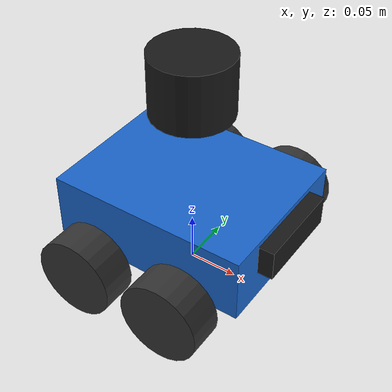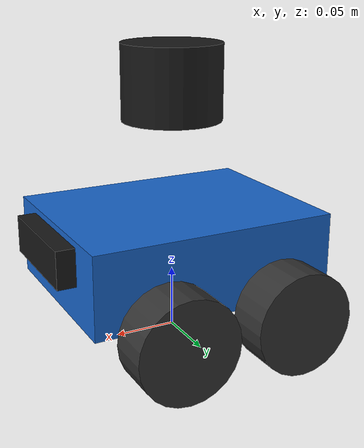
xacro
<?xml version="1.0"?>
<robot name="warehouse_bot" xmlns:xacro="http://www.ros.org/wiki/xacro">

  <!-- ============================================================
       PROPERTIES
       ============================================================ -->

  <!-- Chassis -->
  <xacro:property name="chassis_length"  value="0.20"/>
  <xacro:property name="chassis_width"   value="0.155"/>
  <xacro:property name="chassis_height"  value="0.065"/>
  <xacro:property name="chassis_mass"    value="3.0"/>

  <!-- Wheels -->
  <xacro:property name="wheel_radius"    value="0.04"/>
  <xacro:property name="wheel_width"     value="0.035"/>
  <xacro:property name="wheel_mass"      value="0.3"/>
  <xacro:property name="wheel_separation" value="0.21"/>   <!-- left to right, center to center -->
  <xacro:property name="wheelbase"       value="0.095"/>   <!-- front to rear axle, center to center -->

  <!-- LiDAR -->
  <xacro:property name="lidar_height"    value="0.205"/>   <!-- from ground -->
  <xacro:property name="lidar_radius"    value="0.04"/>
  <xacro:property name="lidar_length"    value="0.06"/>

  <!-- Derived: chassis sits on top of wheels -->
  <!-- chassis_z = wheel_radius (ground to axle) + chassis_height/2 -->
  <xacro:property name="chassis_z"       value="${wheel_radius + chassis_height / 2.0}"/>

  <!-- ============================================================
       MATERIALS
       ============================================================ -->
  <material name="blue">
    <color rgba="0.1 0.4 0.8 1.0"/>
  </material>
  <material name="dark_grey">
    <color rgba="0.2 0.2 0.2 1.0"/>
  </material>
  <material name="grey">
    <color rgba="0.5 0.5 0.5 1.0"/>
  </material>
  <material name="black">
    <color rgba="0.1 0.1 0.1 1.0"/>
  </material>

  <!-- ============================================================
       INERTIA MACROS
       ============================================================ -->
  <xacro:macro name="box_inertia" params="m l w h">
    <inertial>
      <mass value="${m}"/>
      <inertia
        ixx="${m*(w*w+h*h)/12}" ixy="0" ixz="0"
        iyy="${m*(l*l+h*h)/12}" iyz="0"
        izz="${m*(l*l+w*w)/12}"/>
    </inertial>
  </xacro:macro>

  <xacro:macro name="cylinder_inertia" params="m r h">
    <inertial>
      <mass value="${m}"/>
      <inertia
        ixx="${m*(3*r*r+h*h)/12}" ixy="0" ixz="0"
        iyy="${m*(3*r*r+h*h)/12}" iyz="0"
        izz="${m*r*r/2}"/>
    </inertial>
  </xacro:macro>

  <!-- ============================================================
       BASE LINK (chassis)
       ============================================================ -->
  <link name="base_link">
    <xacro:box_inertia m="${chassis_mass}"
                       l="${chassis_length}"
                       w="${chassis_width}"
                       h="${chassis_height}"/>
    <visual>
      <origin xyz="0 0 ${chassis_z}" rpy="0 0 0"/>
      <geometry>
        <box size="${chassis_length} ${chassis_width} ${chassis_height}"/>
      </geometry>
      <material name="blue"/>
    </visual>
    <collision>
      <origin xyz="0 0 ${chassis_z}" rpy="0 0 0"/>
      <geometry>
        <box size="${chassis_length} ${chassis_width} ${chassis_height}"/>
      </geometry>
    </collision>
  </link>

  <!-- ============================================================
       WHEEL MACRO
       ============================================================ -->
  <xacro:macro name="wheel" params="name x_pos y_pos">

    <link name="${name}_link">
      <xacro:cylinder_inertia m="${wheel_mass}" r="${wheel_radius}" h="${wheel_width}"/>
      <visual>
        <origin xyz="0 0 0" rpy="${pi/2} 0 0"/>
        <geometry>
          <cylinder radius="${wheel_radius}" length="${wheel_width}"/>
        </geometry>
        <material name="dark_grey"/>
      </visual>
      <collision>
        <origin xyz="0 0 0" rpy="${pi/2} 0 0"/>
        <geometry>
          <cylinder radius="${wheel_radius}" length="${wheel_width}"/>
        </geometry>
      </collision>
    </link>

    <joint name="${name}_joint" type="continuous">
      <parent link="base_link"/>
      <child  link="${name}_link"/>
      <origin xyz="${x_pos} ${y_pos} ${wheel_radius}" rpy="0 0 0"/>
      <axis xyz="0 1 0"/>
      <dynamics damping="0.1" friction="0.1"/>
    </joint>

    <!-- Gazebo wheel friction -->
    <gazebo reference="${name}_link">
      <mu1>1.0</mu1>
      <mu2>1.0</mu2>
      <material>Gazebo/DarkGrey</material>
    </gazebo>

  </xacro:macro>

  <xacro:wheel name="front_left_wheel"
               x_pos="${wheelbase/2}"
               y_pos="${wheel_separation/2}"/>

  <xacro:wheel name="front_right_wheel"
               x_pos="${wheelbase/2}"
               y_pos="${-wheel_separation/2}"/>

  <xacro:wheel name="rear_left_wheel"
               x_pos="${-wheelbase/2}"
               y_pos="${wheel_separation/2}"/>

  <xacro:wheel name="rear_right_wheel"
               x_pos="${-wheelbase/2}"
               y_pos="${-wheel_separation/2}"/>

  <link name="base_laser">
    <inertial>
      <mass value="0.18"/>
      <inertia ixx="0.001" ixy="0" ixz="0"
               iyy="0.001" iyz="0" izz="0.001"/>
    </inertial>
    <visual>
      <origin xyz="0 0 0" rpy="0 0 0"/>
      <geometry>
        <cylinder radius="${lidar_radius}" length="${lidar_length}"/>
      </geometry>
      <material name="black"/>
    </visual>
    <collision>
      <origin xyz="0 0 0" rpy="0 0 0"/>
      <geometry>
        <cylinder radius="${lidar_radius}" length="${lidar_length}"/>
      </geometry>
    </collision>
  </link>

  <joint name="lidar_joint" type="fixed">
    <parent link="base_link"/>
    <child  link="base_laser"/>
    <origin xyz="0 0 ${lidar_height}" rpy="0 0 0"/>
  </joint>

  <link name="imu_link">
    <inertial>
      <mass value="0.01"/>
      <inertia ixx="0.00001" ixy="0" ixz="0"
               iyy="0.00001" iyz="0" izz="0.00001"/>
    </inertial>
    <visual>
      <origin xyz="0 0 0" rpy="0 0 0"/>
      <geometry><box size="0.02 0.02 0.005"/></geometry>
      <material name="grey"/>
    </visual>
  </link>

  <joint name="imu_joint" type="fixed">
    <parent link="base_link"/>
    <child  link="imu_link"/>
    <origin xyz="0 0 ${chassis_z}" rpy="0 0 0"/>
  </joint>

  <!-- ============================================================
       CAMERA LINK (placeholder — update when camera selected)
       ============================================================ -->
  <link name="camera_link">
    <inertial>
      <mass value="0.05"/>
      <inertia ixx="0.00001" ixy="0" ixz="0"
               iyy="0.00001" iyz="0" izz="0.00001"/>
    </inertial>
    <visual>
      <origin xyz="0 0 0" rpy="0 0 0"/>
      <geometry><box size="0.03 0.09 0.03"/></geometry>
      <material name="black"/>
    </visual>
  </link>

  <joint name="camera_joint" type="fixed">
    <parent link="base_link"/>
    <child  link="camera_link"/>
    <!-- Camera is centered left/right, 10 cm forward of robot center, 8.5 cm from ground. -->
    <origin xyz="0.10 0 0.085" rpy="0 0 0"/>
  </joint>

  <link name="camera_optical_link"/>
  <joint name="camera_optical_joint" type="fixed">
    <parent link="camera_link"/>
    <child  link="camera_optical_link"/>
    <origin xyz="0 0 0" rpy="${-pi/2} 0 ${-pi/2}"/>
  </joint>

  <!-- ============================================================
       GAZEBO PLUGINS
       ============================================================ -->

  <!-- Differential drive plugin (skid steer — all 4 wheels) -->
  <gazebo>
    <plugin name="diff_drive" filename="libgazebo_ros_diff_drive.so">
      <num_wheel_pairs>2</num_wheel_pairs>
      <left_joint>front_left_wheel_joint</left_joint>
      <left_joint>rear_left_wheel_joint</left_joint>
      <right_joint>front_right_wheel_joint</right_joint>
      <right_joint>rear_right_wheel_joint</right_joint>
      <wheel_separation>${wheel_separation}</wheel_separation>
      <wheel_diameter>${2*wheel_radius}</wheel_diameter>
      <max_wheel_torque>20</max_wheel_torque>
      <max_wheel_acceleration>1.0</max_wheel_acceleration>
      <publish_odom>true</publish_odom>
      <publish_odom_tf>true</publish_odom_tf>
      <publish_wheel_tf>false</publish_wheel_tf>
      <odometry_frame>odom</odometry_frame>
      <robot_base_frame>base_link</robot_base_frame>
    </plugin>
  </gazebo>

  <!-- IMU plugin -->
  <gazebo reference="imu_link">
    <sensor name="imu_sensor" type="imu">
      <always_on>true</always_on>
      <update_rate>50</update_rate>
      <plugin filename="libgazebo_ros_imu_sensor.so" name="imu_plugin">
        <topicName>/imu/data</topicName>
        <bodyName>imu_link</bodyName>
        <updateRateHZ>50.0</updateRateHZ>
        <gaussianNoise>0.01</gaussianNoise>
        <frameName>imu_link</frameName>
      </plugin>
    </sensor>
  </gazebo>

  <!-- LiDAR plugin -->
  <gazebo reference="base_laser">
    <sensor type="ray" name="lidar">
      <pose>0 0 0 0 0 0</pose>
      <visualize>false</visualize>
      <update_rate>10</update_rate>
      <ray>
        <scan>
          <horizontal>
            <samples>360</samples>
            <resolution>1</resolution>
            <min_angle>-3.14159</min_angle>
            <max_angle>3.14159</max_angle>
          </horizontal>
        </scan>
        <range>
          <min>0.15</min>
          <max>12.0</max>
          <resolution>0.01</resolution>
        </range>
        <noise>
          <type>gaussian</type>
          <mean>0.0</mean>
          <stddev>0.01</stddev>
        </noise>
      </ray>
      <plugin name="lidar_plugin" filename="libgazebo_ros_ray_sensor.so">
        <ros>
          <remapping>~/out:=/scan</remapping>
        </ros>
        <output_type>sensor_msgs/LaserScan</output_type>
        <frame_name>base_laser</frame_name>
      </plugin>
    </sensor>
  </gazebo>

</robot>
